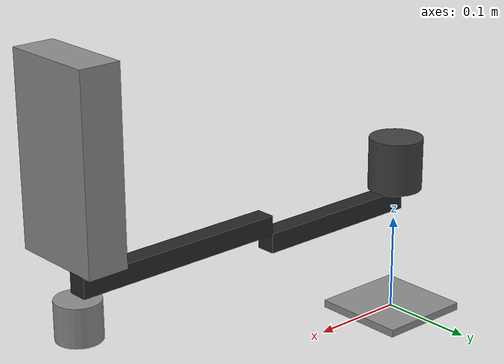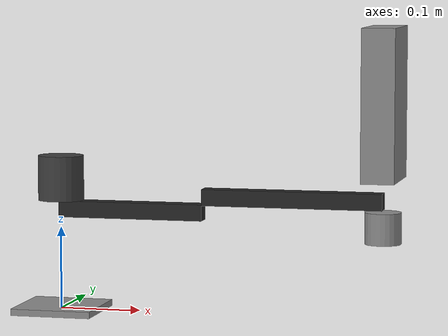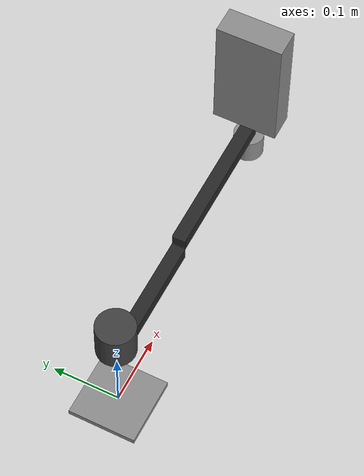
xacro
<?xml version="1.0"?>
<robot xmlns:xacro="http://www.ros.org/wiki/xacro" name="manual_total_robot">
  <xacro:arg name="ifname" default="can_arm"/>
  <xacro:arg name="shoulder_actuator_id" default="4"/>
  <xacro:arg name="elbow_actuator_id" default="5"/>
  <xacro:arg name="wrist_actuator_id" default="6"/>
  <xacro:arg name="timeout" default="0"/>
  <!-- Per-joint RMD operation limits in degrees per second. -->
  <xacro:arg name="shoulder_max_velocity" default="15.0"/>
  <xacro:arg name="wrist_max_velocity" default="30.0"/>
  <!-- Low-speed calibration/test limits. -->
  <xacro:arg name="elbow_max_velocity" default="5.0"/>
  <xacro:arg name="dxl_port_name" default="/dev/ttyUSB0"/>
  <xacro:arg name="dxl_baud_rate" default="1000000"/>
  <!-- Empty means the normal five-axis setup. Test launch sets one joint name. -->
  <xacro:arg name="test_joint" default=""/>
  <xacro:property name="test_joint" value="$(arg test_joint)"/>

  <xacro:property name="sh_off" value="0.1616"/>
  <xacro:property name="L1" value="0.180"/>
  <xacro:property name="L2" value="0.220"/>
  <xacro:property name="off_shoulder" value="-0.0377"/>
  <xacro:property name="off_elbow" value="0.0188"/>
  <xacro:property name="off_wrist" value="-0.0313"/>
  <xacro:property name="off_gripper" value="0.038"/>

  <material name="cfrp"><color rgba="0.15 0.15 0.15 1.0"/></material>
  <material name="petg_grey"><color rgba="0.55 0.55 0.55 1.0"/></material>
  <material name="motor_dark"><color rgba="0.25 0.25 0.25 1.0"/></material>
  <material name="tcp_red"><color rgba="1.0 0.1 0.1 1.0"/></material>

  <link name="base_link">
    <visual><geometry><box size="0.100 0.100 0.008"/></geometry><material name="petg_grey"/></visual>
    <collision><geometry><box size="0.100 0.100 0.008"/></geometry></collision>
    <inertial>
      <mass value="0.3"/><origin xyz="0 0 0"/>
      <inertia ixx="2.5e-4" ixy="0" ixz="0" iyy="2.5e-4" iyz="0" izz="5.0e-4"/>
    </inertial>
  </link>
  <link name="base_yaw_link">
    <visual><geometry><cylinder radius="0.028" length="0.055"/></geometry><material name="motor_dark"/></visual>
    <collision><geometry><cylinder radius="0.028" length="0.055"/></geometry></collision>
    <inertial>
      <mass value="0.202"/><origin xyz="0 0 0"/>
      <inertia ixx="1.3e-4" ixy="0" ixz="0" iyy="1.3e-4" iyz="0" izz="8.0e-5"/>
    </inertial>
  </link>
  <joint name="base_rotate_joint" type="revolute">
    <parent link="base_link"/><child link="base_yaw_link"/>
    <origin xyz="0 0 ${sh_off}" rpy="0 0 0"/><axis xyz="0 0 1"/>
    <limit lower="-3.1416" upper="3.1416" effort="3.1" velocity="2.618"/>
    <dynamics damping="0.05" friction="0.02"/>
  </joint>
  <link name="shoulder_link">
    <visual>
      <origin xyz="${L1/2} 0 0" rpy="0 1.5708 0"/>
      <geometry><box size="0.020 0.020 ${L1}"/></geometry><material name="cfrp"/>
    </visual>
    <collision>
      <origin xyz="${L1/2} 0 0" rpy="0 0 0"/>
      <geometry><box size="${L1} 0.022 0.022"/></geometry>
    </collision>
    <inertial>
      <mass value="0.08"/><origin xyz="${L1/2} 0 0"/>
      <inertia ixx="6.0e-6" ixy="0" ixz="0" iyy="2.2e-4" iyz="0" izz="2.2e-4"/>
    </inertial>
  </link>
  <joint name="shoulder_lift_joint" type="revolute">
    <parent link="base_yaw_link"/><child link="shoulder_link"/>
    <origin xyz="0 0 ${off_shoulder}" rpy="0 0 0"/><axis xyz="0 1 0"/>
    <limit
      lower="${-12.5664 if test_joint == 'shoulder_lift_joint' else 0.0}"
      upper="${12.5664 if test_joint == 'shoulder_lift_joint' else 2.0944}"
      effort="120.0" velocity="1.047"/>
    <dynamics damping="1.0" friction="0.1"/>
  </joint>
  <link name="elbow_link">
    <visual>
      <origin xyz="${L2/2} 0 0" rpy="0 1.5708 0"/>
      <geometry><box size="0.020 0.020 ${L2}"/></geometry><material name="cfrp"/>
    </visual>
    <collision>
      <origin xyz="${L2/2} 0 0" rpy="0 0 0"/>
      <geometry><box size="${L2} 0.022 0.022"/></geometry>
    </collision>
    <inertial>
      <mass value="0.10"/><origin xyz="${L2/2} 0 0"/>
      <inertia ixx="7.3e-6" ixy="0" ixz="0" iyy="4.0e-4" iyz="0" izz="4.0e-4"/>
    </inertial>
  </link>
  <joint name="elbow_joint" type="revolute">
    <parent link="shoulder_link"/><child link="elbow_link"/>
    <origin xyz="${L1} 0 ${off_elbow}" rpy="0 0 0"/><axis xyz="0 1 0"/>
    <limit
      lower="${-12.5664 if test_joint == 'elbow_joint' else -1.5708}"
      upper="${12.5664 if test_joint == 'elbow_joint' else 0.3491}"
      effort="60.0" velocity="1.571"/>
    <dynamics damping="0.5" friction="0.05"/>
  </joint>
  <link name="wrist_link">
    <visual><geometry><cylinder radius="0.022" length="0.038"/></geometry><material name="petg_grey"/></visual>
    <collision><geometry><cylinder radius="0.022" length="0.038"/></geometry></collision>
    <inertial>
      <mass value="0.09"/><origin xyz="0 0 0"/>
      <inertia ixx="5.0e-5" ixy="0" ixz="0" iyy="5.0e-5" iyz="0" izz="3.0e-5"/>
    </inertial>
  </link>
  <joint name="wrist_joint" type="revolute">
    <parent link="elbow_link"/><child link="wrist_link"/>
    <origin xyz="${L2} 0 ${off_wrist}" rpy="0 0 0"/><axis xyz="0 1 0"/>
    <limit
      lower="${-12.5664 if test_joint == 'wrist_joint' else -2.0944}"
      upper="${12.5664 if test_joint == 'wrist_joint' else 2.0944}"
      effort="36.0" velocity="2.618"/>
    <dynamics damping="0.2" friction="0.02"/>
  </joint>
  <link name="gripper_link">
    <visual>
      <origin xyz="0 0 0.110" rpy="0 0 0"/>
      <geometry><box size="0.040 0.095 0.182"/></geometry><material name="petg_grey"/>
    </visual>
    <collision>
      <origin xyz="0 0 0.110" rpy="0 0 0"/>
      <geometry><box size="0.040 0.095 0.182"/></geometry>
    </collision>
    <inertial>
      <mass value="0.15"/><origin xyz="0 0 0.110"/>
      <inertia ixx="5.0e-4" ixy="0" ixz="0" iyy="5.0e-4" iyz="0" izz="1.0e-4"/>
    </inertial>
  </link>
  <joint name="gripper_joint" type="revolute">
    <parent link="wrist_link"/><child link="gripper_link"/>
    <origin xyz="0 0 ${off_gripper}" rpy="0 0 0"/><axis xyz="0 0 1"/>
    <limit lower="-2.3562" upper="2.3562" effort="8.4" velocity="3.665"/>
    <dynamics damping="0.05" friction="0.01"/>
  </joint>

  <link name="tcp_link">
    <visual><geometry><sphere radius="0.005"/></geometry><material name="tcp_red"/></visual>
    <inertial>
      <mass value="0.001"/>
      <inertia ixx="1e-7" ixy="0" ixz="0" iyy="1e-7" iyz="0" izz="1e-7"/>
    </inertial>
  </link>
  <joint name="tcp_joint" type="fixed">
    <parent link="gripper_link"/><child link="tcp_link"/>
    <origin xyz="0 0 0.182" rpy="0 0 0"/>
  </joint>

  <xacro:macro name="rmd_actuator" params="name joint_name actuator_id max_velocity">
    <ros2_control name="${name}" type="actuator">
      <hardware>
        <plugin>rmd_hardware_interface/MyActuatorRmdHardwareInterface</plugin>
        <param name="ifname">$(arg ifname)</param><param name="actuator_id">${actuator_id}</param>
        <param name="torque_constant">1.0</param><param name="max_velocity">${max_velocity}</param>
        <param name="velocity_alpha">0.1</param><param name="effort_alpha">0.1</param>
        <param name="timeout">$(arg timeout)</param>
      </hardware>
      <joint name="${joint_name}">
        <command_interface name="position"/><command_interface name="velocity"/><command_interface name="effort"/>
        <state_interface name="position"/><state_interface name="velocity"/><state_interface name="effort"/>
      </joint>
    </ros2_control>
  </xacro:macro>
  <!-- During a Dynamixel single-axis test all three RMDs stay active for pose holding. -->
  <xacro:if value="${test_joint == '' or test_joint == 'shoulder_lift_joint' or test_joint == 'gripper_joint' or test_joint == 'base_rotate_joint'}">
    <xacro:rmd_actuator name="shoulder_rmd" joint_name="shoulder_lift_joint" actuator_id="$(arg shoulder_actuator_id)" max_velocity="$(arg shoulder_max_velocity)"/>
  </xacro:if>
  <xacro:if value="${test_joint == '' or test_joint == 'elbow_joint' or test_joint == 'gripper_joint' or test_joint == 'base_rotate_joint'}">
    <xacro:rmd_actuator name="elbow_rmd" joint_name="elbow_joint" actuator_id="$(arg elbow_actuator_id)" max_velocity="$(arg elbow_max_velocity)"/>
  </xacro:if>
  <xacro:if value="${test_joint == '' or test_joint == 'wrist_joint' or test_joint == 'gripper_joint' or test_joint == 'base_rotate_joint'}">
    <xacro:rmd_actuator name="wrist_rmd" joint_name="wrist_joint" actuator_id="$(arg wrist_actuator_id)" max_velocity="$(arg wrist_max_velocity)"/>
  </xacro:if>

  <xacro:if value="${test_joint == '' or test_joint == 'gripper_joint' or test_joint == 'base_rotate_joint'}">
    <xacro:property name="dxl_joint_count" value="${2 if test_joint == '' else 1}"/>
    <ros2_control name="dynamixel_system" type="system">
    <hardware>
      <plugin>dynamixel_hardware_interface/DynamixelHardware</plugin>
      <param name="port_name">$(arg dxl_port_name)</param><param name="baud_rate">$(arg dxl_baud_rate)</param>
      <param name="dynamixel_model_folder">/param/dxl_model</param>
      <param name="number_of_joints">${dxl_joint_count}</param><param name="number_of_transmissions">${dxl_joint_count}</param>
      <param name="disable_torque_at_init">true</param><param name="error_timeout_ms">1000</param>
      <param name="transmission_to_joint_matrix">${'1,0,0,1' if test_joint == '' else '1'}</param>
      <param name="joint_to_transmission_matrix">${'1,0,0,1' if test_joint == '' else '1'}</param>
      <param name="dynamixel_state_pub_msg_name">dynamixel_hardware_interface/dxl_state</param>
      <param name="get_dynamixel_data_srv_name">dynamixel_hardware_interface/get_dxl_data</param>
      <param name="set_dynamixel_data_srv_name">dynamixel_hardware_interface/set_dxl_data</param>
      <param name="reboot_dxl_srv_name">dynamixel_hardware_interface/reboot_dxl</param>
      <param name="set_dxl_torque_srv_name">dynamixel_hardware_interface/set_dxl_torque</param>
    </hardware>
      <xacro:if value="${test_joint == '' or test_joint == 'gripper_joint'}">
        <joint name="gripper_joint"><command_interface name="position"/><state_interface name="position"/><state_interface name="velocity"/><state_interface name="effort"/></joint>
        <gpio name="dxl1"><param name="type">dxl</param><param name="ID">4</param><command_interface name="Goal Position"/><state_interface name="Present Position"/><state_interface name="Present Velocity"/><state_interface name="Present Current"/><param name="Return Delay Time">0</param></gpio>
      </xacro:if>
      <xacro:if value="${test_joint == '' or test_joint == 'base_rotate_joint'}">
        <joint name="base_rotate_joint"><command_interface name="position"/><state_interface name="position"/><state_interface name="velocity"/><state_interface name="effort"/></joint>
        <gpio name="dxl2"><param name="type">dxl</param><param name="ID">0</param><command_interface name="Goal Position"/><state_interface name="Present Position"/><state_interface name="Present Velocity"/><state_interface name="Present Current"/><param name="Return Delay Time">0</param></gpio>
      </xacro:if>
    </ros2_control>
  </xacro:if>
</robot>
